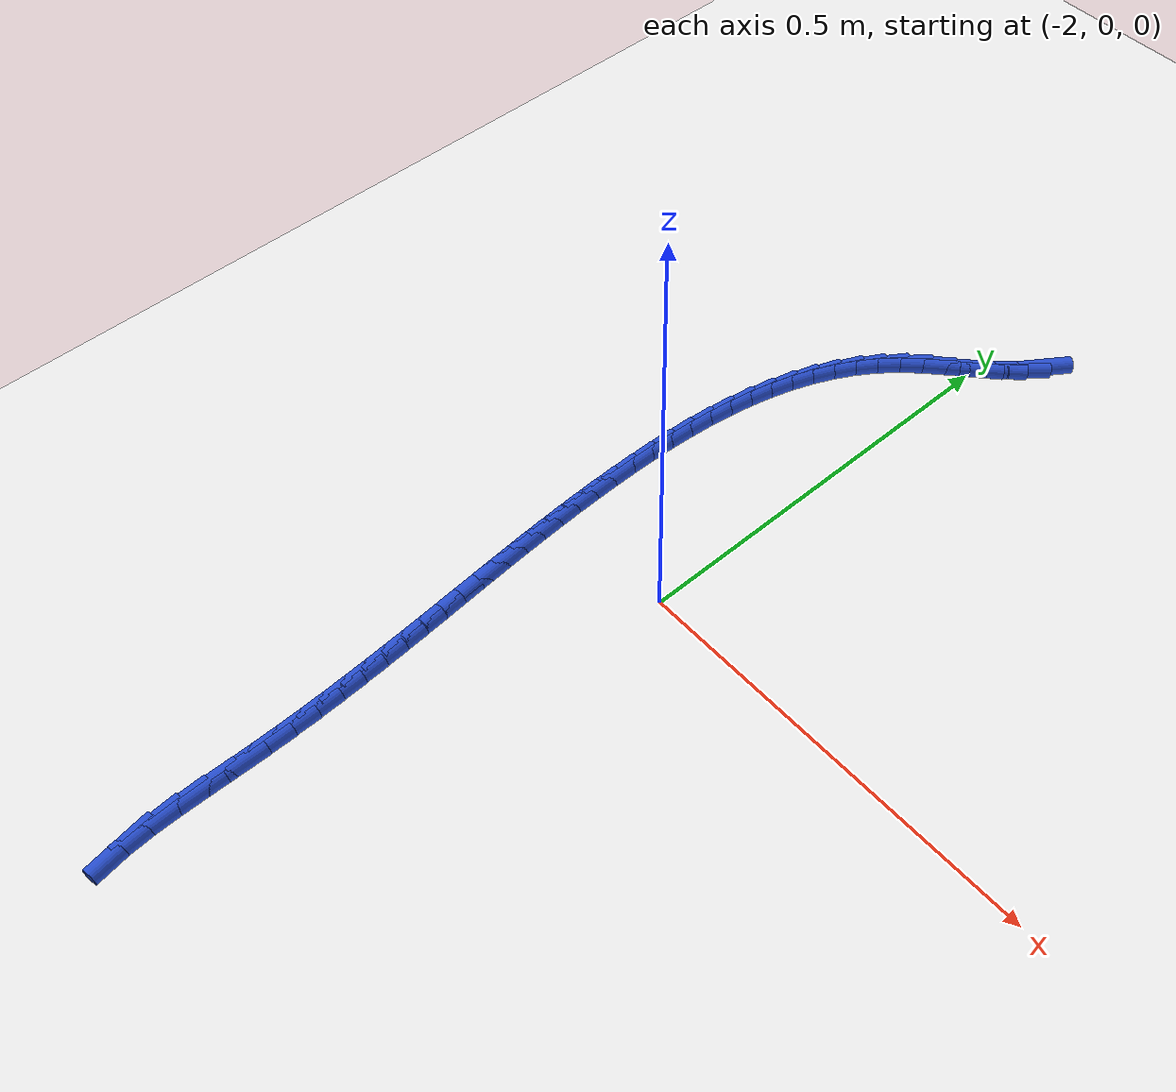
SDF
<sdf version="1.6">
 <world name="default">
  <model name="ground_plane">
   <static>1</static>
   <link name="link">
    <collision name="collision">
     <geometry><plane><normal>0 0 1</normal><size>100 100</size></plane></geometry>
     <surface><friction><ode><mu>100</mu><mu2>50</mu2></ode></friction></surface>
    </collision>
    <visual name="visual">
     <cast_shadows>0</cast_shadows>
     <geometry><plane><normal>0 0 1</normal><size>100 100</size></plane></geometry>
     <material>
      <script><uri>file://media/materials/scripts/gazebo.material</uri><name>Gazebo/WhiteGlow</name></script>
     </material>
    </visual>
   </link>
  </model>
  <model name="line">
   <link name="link_104">
    <pose>-1.9464546844692985 0.5647826969443958 0.01 0 1.57 0.9623820127964574</pose>
    <collision name="collision">
     <geometry><cylinder><radius>0.01</radius><length>0.08</length></cylinder></geometry>
    </collision>
    <visual name="visual">
     <material>
      <script><name>Gazebo/Blue</name><uri>file://media/materials/scripts/gazebo.material</uri></script>
     </material>
     <geometry><cylinder><radius>0.01</radius><length>0.08</length></cylinder></geometry>
    </visual>
   </link>
   <link name="link_105">
    <pose>-1.9619744686578455 0.5425021217357677 0.01 0 1.57 0.8348467030545368</pose>
    <collision name="collision">
     <geometry><cylinder><radius>0.01</radius><length>0.08</length></cylinder></geometry>
    </collision>
    <visual name="visual">
     <material>
      <script><name>Gazebo/Blue</name><uri>file://media/materials/scripts/gazebo.material</uri></script>
     </material>
     <geometry><cylinder><radius>0.01</radius><length>0.08</length></cylinder></geometry>
    </visual>
   </link>
   <link name="link_106">
    <pose>-1.9803952766112232 0.5221631348588148 0.01 0 1.57 0.7561252338814043</pose>
    <collision name="collision">
     <geometry><cylinder><radius>0.01</radius><length>0.08</length></cylinder></geometry>
    </collision>
    <visual name="visual">
     <material>
      <script><name>Gazebo/Blue</name><uri>file://media/materials/scripts/gazebo.material</uri></script>
     </material>
     <geometry><cylinder><radius>0.01</radius><length>0.08</length></cylinder></geometry>
    </visual>
   </link>
   <link name="link_107">
    <pose>-2.0006681552356387 0.5030437137348354 0.01 0 1.57 0.7241614613899445</pose>
    <collision name="collision">
     <geometry><cylinder><radius>0.01</radius><length>0.08</length></cylinder></geometry>
    </collision>
    <visual name="visual">
     <material>
      <script><name>Gazebo/Blue</name><uri>file://media/materials/scripts/gazebo.material</uri></script>
     </material>
     <geometry><cylinder><radius>0.01</radius><length>0.08</length></cylinder></geometry>
    </visual>
   </link>
   <link name="link_108">
    <pose>-2.0217320306328013 0.48441360965173036 0.01 0 1.57 0.7369608355492149</pose>
    <collision name="collision">
     <geometry><cylinder><radius>0.01</radius><length>0.08</length></cylinder></geometry>
    </collision>
    <visual name="visual">
     <material>
      <script><name>Gazebo/Blue</name><uri>file://media/materials/scripts/gazebo.material</uri></script>
     </material>
     <geometry><cylinder><radius>0.01</radius><length>0.08</length></cylinder></geometry>
    </visual>
   </link>
   <link name="link_109">
    <pose>-2.0425258289044192 0.4655425738973997 0.01 0 1.57 0.7950445191530661</pose>
    <collision name="collision">
     <geometry><cylinder><radius>0.01</radius><length>0.08</length></cylinder></geometry>
    </collision>
    <visual name="visual">
     <material>
      <script><name>Gazebo/Blue</name><uri>file://media/materials/scripts/gazebo.material</uri></script>
     </material>
     <geometry><cylinder><radius>0.01</radius><length>0.08</length></cylinder></geometry>
    </visual>
   </link>
   <link name="link_110">
    <pose>-2.0619887106263812 0.4457005311302075 0.01 0 1.57 0.8886003122689674</pose>
    <collision name="collision">
     <geometry><cylinder><radius>0.01</radius><length>0.08</length></cylinder></geometry>
    </collision>
    <visual name="visual">
     <material>
      <script><name>Gazebo/Blue</name><uri>file://media/materials/scripts/gazebo.material</uri></script>
     </material>
     <geometry><cylinder><radius>0.01</radius><length>0.08</length></cylinder></geometry>
    </visual>
   </link>
   <link name="link_111">
    <pose>-2.0793274538833786 0.4243552826865567 0.01 0 1.57 0.982735867131478</pose>
    <collision name="collision">
     <geometry><cylinder><radius>0.01</radius><length>0.08</length></cylinder></geometry>
    </collision>
    <visual name="visual">
     <material>
      <script><name>Gazebo/Blue</name><uri>file://media/materials/scripts/gazebo.material</uri></script>
     </material>
     <geometry><cylinder><radius>0.01</radius><length>0.08</length></cylinder></geometry>
    </visual>
   </link>
   <link name="link_112">
    <pose>-2.094530937373768 0.40155291595003506 0.01 0 1.57 1.0698774159428524</pose>
    <collision name="collision">
     <geometry><cylinder><radius>0.01</radius><length>0.08</length></cylinder></geometry>
    </collision>
    <visual name="visual">
     <material>
      <script><name>Gazebo/Blue</name><uri>file://media/materials/scripts/gazebo.material</uri></script>
     </material>
     <geometry><cylinder><radius>0.01</radius><length>0.08</length></cylinder></geometry>
    </visual>
   </link>
   <link name="link_113">
    <pose>-2.107730151943334 0.3774445961811116 0.01 0 1.57 1.1493410232021635</pose>
    <collision name="collision">
     <geometry><cylinder><radius>0.01</radius><length>0.08</length></cylinder></geometry>
    </collision>
    <visual name="visual">
     <material>
      <script><name>Gazebo/Blue</name><uri>file://media/materials/scripts/gazebo.material</uri></script>
     </material>
     <geometry><cylinder><radius>0.01</radius><length>0.08</length></cylinder></geometry>
    </visual>
   </link>
   <link name="link_114">
    <pose>-2.119056088437858 0.35218148864025584 0.01 0 1.57 1.2209460215558836</pose>
    <collision name="collision">
     <geometry><cylinder><radius>0.01</radius><length>0.08</length></cylinder></geometry>
    </collision>
    <visual name="visual">
     <material>
      <script><name>Gazebo/Blue</name><uri>file://media/materials/scripts/gazebo.material</uri></script>
     </material>
     <geometry><cylinder><radius>0.01</radius><length>0.08</length></cylinder></geometry>
    </visual>
   </link>
   <link name="link_115">
    <pose>-2.1286397377031223 0.3259147585879358 0.01 0 1.57 1.2848765263477977</pose>
    <collision name="collision">
     <geometry><cylinder><radius>0.01</radius><length>0.08</length></cylinder></geometry>
    </collision>
    <visual name="visual">
     <material>
      <script><name>Gazebo/Blue</name><uri>file://media/materials/scripts/gazebo.material</uri></script>
     </material>
     <geometry><cylinder><radius>0.01</radius><length>0.08</length></cylinder></geometry>
    </visual>
   </link>
   <link name="link_116">
    <pose>-2.1366120905849106 0.298795571284622 0.01 0 1.57 1.3415438661761028</pose>
    <collision name="collision">
     <geometry><cylinder><radius>0.01</radius><length>0.08</length></cylinder></geometry>
    </collision>
    <visual name="visual">
     <material>
      <script><name>Gazebo/Blue</name><uri>file://media/materials/scripts/gazebo.material</uri></script>
     </material>
     <geometry><cylinder><radius>0.01</radius><length>0.08</length></cylinder></geometry>
    </visual>
   </link>
   <link name="link_117">
    <pose>-2.143104137929005 0.2709750919907828 0.01 0 1.57 1.3914737605114753</pose>
    <collision name="collision">
     <geometry><cylinder><radius>0.01</radius><length>0.08</length></cylinder></geometry>
    </collision>
    <visual name="visual">
     <material>
      <script><name>Gazebo/Blue</name><uri>file://media/materials/scripts/gazebo.material</uri></script>
     </material>
     <geometry><cylinder><radius>0.01</radius><length>0.08</length></cylinder></geometry>
    </visual>
   </link>
   <link name="link_118">
    <pose>-2.1482468705811875 0.24260448596688697 0.01 0 1.57 1.4352247302440326</pose>
    <collision name="collision">
     <geometry><cylinder><radius>0.01</radius><length>0.08</length></cylinder></geometry>
    </collision>
    <visual name="visual">
     <material>
      <script><name>Gazebo/Blue</name><uri>file://media/materials/scripts/gazebo.material</uri></script>
     </material>
     <geometry><cylinder><radius>0.01</radius><length>0.08</length></cylinder></geometry>
    </visual>
   </link>
   <link name="link_119">
    <pose>-2.1521712793872427 0.21383491847340438 0.01 0 1.57 1.473334435243141</pose>
    <collision name="collision">
     <geometry><cylinder><radius>0.01</radius><length>0.08</length></cylinder></geometry>
    </collision>
    <visual name="visual">
     <material>
      <script><name>Gazebo/Blue</name><uri>file://media/materials/scripts/gazebo.material</uri></script>
     </material>
     <geometry><cylinder><radius>0.01</radius><length>0.08</length></cylinder></geometry>
    </visual>
   </link>
   <link name="link_120">
    <pose>-2.155008355192951 0.18481755477080375 0.01 0 1.57 1.5062870044493666</pose>
    <collision name="collision">
     <geometry><cylinder><radius>0.01</radius><length>0.08</length></cylinder></geometry>
    </collision>
    <visual name="visual">
     <material>
      <script><name>Gazebo/Blue</name><uri>file://media/materials/scripts/gazebo.material</uri></script>
     </material>
     <geometry><cylinder><radius>0.01</radius><length>0.08</length></cylinder></geometry>
    </visual>
   </link>
   <link name="link_121">
    <pose>-2.156889088844096 0.15570356011955422 0.01 0 1.57 1.5344942523332061</pose>
    <collision name="collision">
     <geometry><cylinder><radius>0.01</radius><length>0.08</length></cylinder></geometry>
    </collision>
    <visual name="visual">
     <material>
      <script><name>Gazebo/Blue</name><uri>file://media/materials/scripts/gazebo.material</uri></script>
     </material>
     <geometry><cylinder><radius>0.01</radius><length>0.08</length></cylinder></geometry>
    </visual>
   </link>
   <link name="link_122">
    <pose>-2.1579444711864606 0.12664409978012478 0.01 0 1.57 1.558284854050379</pose>
    <collision name="collision">
     <geometry><cylinder><radius>0.01</radius><length>0.08</length></cylinder></geometry>
    </collision>
    <visual name="visual">
     <material>
      <script><name>Gazebo/Blue</name><uri>file://media/materials/scripts/gazebo.material</uri></script>
     </material>
     <geometry><cylinder><radius>0.01</radius><length>0.08</length></cylinder></geometry>
    </visual>
   </link>
   <link name="link_123">
    <pose>-2.1583054930658268 0.0977903390129842 0.01 0 1.57 -1.5636957521345343</pose>
    <collision name="collision">
     <geometry><cylinder><radius>0.01</radius><length>0.08</length></cylinder></geometry>
    </collision>
    <visual name="visual">
     <material>
      <script><name>Gazebo/Blue</name><uri>file://media/materials/scripts/gazebo.material</uri></script>
     </material>
     <geometry><cylinder><radius>0.01</radius><length>0.08</length></cylinder></geometry>
    </visual>
   </link>
   <link name="link_124">
    <pose>-2.1581031453279778 0.06929344307860241 0.01 0 1.57 -1.547834949372782</pose>
    <collision name="collision">
     <geometry><cylinder><radius>0.01</radius><length>0.08</length></cylinder></geometry>
    </collision>
    <visual name="visual">
     <material>
      <script><name>Gazebo/Blue</name><uri>file://media/materials/scripts/gazebo.material</uri></script>
     </material>
     <geometry><cylinder><radius>0.01</radius><length>0.08</length></cylinder></geometry>
    </visual>
   </link>
   <link name="link_125">
    <pose>-2.157459825845208 0.041280906680430766 0.01 0 1.57 -1.533958085916826</pose>
    <collision name="collision">
     <geometry><cylinder><radius>0.01</radius><length>0.08</length></cylinder></geometry>
    </collision>
    <visual name="visual">
     <material>
      <script><name>Gazebo/Blue</name><uri>file://media/materials/scripts/gazebo.material</uri></script>
     </material>
     <geometry><cylinder><radius>0.01</radius><length>0.08</length></cylinder></geometry>
    </visual>
   </link>
   <link name="link_126">
    <pose>-2.1564445573085793 0.013733195059703565 0.01 0 1.57 -1.5215461282622815</pose>
    <collision name="collision">
     <geometry><cylinder><radius>0.01</radius><length>0.08</length></cylinder></geometry>
    </collision>
    <visual name="visual">
     <material>
      <script><name>Gazebo/Blue</name><uri>file://media/materials/scripts/gazebo.material</uri></script>
     </material>
     <geometry><cylinder><radius>0.01</radius><length>0.08</length></cylinder></geometry>
    </visual>
   </link>
   <link name="link_127">
    <pose>-2.1551058989369776 -0.013425596061650143 0.01 0 1.57 -1.5107650849887322</pose>
    <collision name="collision">
     <geometry><cylinder><radius>0.01</radius><length>0.08</length></cylinder></geometry>
    </collision>
    <visual name="visual">
     <material>
      <script><name>Gazebo/Blue</name><uri>file://media/materials/scripts/gazebo.material</uri></script>
     </material>
     <geometry><cylinder><radius>0.01</radius><length>0.08</length></cylinder></geometry>
    </visual>
   </link>
   <link name="link_128">
    <pose>-2.153492368090823 -0.040271486266748494 0.01 0 1.57 -1.5017609805808831</pose>
    <collision name="collision">
     <geometry><cylinder><radius>0.01</radius><length>0.08</length></cylinder></geometry>
    </collision>
    <visual name="visual">
     <material>
      <script><name>Gazebo/Blue</name><uri>file://media/materials/scripts/gazebo.material</uri></script>
     </material>
     <geometry><cylinder><radius>0.01</radius><length>0.08</length></cylinder></geometry>
    </visual>
   </link>
   <link name="link_129">
    <pose>-2.151652482130534 -0.06688049513870933 0.01 0 1.57 -1.4946540229695542</pose>
    <collision name="collision">
     <geometry><cylinder><radius>0.01</radius><length>0.08</length></cylinder></geometry>
    </collision>
    <visual name="visual">
     <material>
      <script><name>Gazebo/Blue</name><uri>file://media/materials/scripts/gazebo.material</uri></script>
     </material>
     <geometry><cylinder><radius>0.01</radius><length>0.08</length></cylinder></geometry>
    </visual>
   </link>
   <link name="link_130">
    <pose>-2.1496347584165325 -0.09332864226065062 0.01 0 1.57 -1.4895350395210905</pose>
    <collision name="collision">
     <geometry><cylinder><radius>0.01</radius><length>0.08</length></cylinder></geometry>
    </collision>
    <visual name="visual">
     <material>
      <script><name>Gazebo/Blue</name><uri>file://media/materials/scripts/gazebo.material</uri></script>
     </material>
     <geometry><cylinder><radius>0.01</radius><length>0.08</length></cylinder></geometry>
    </visual>
   </link>
   <link name="link_131">
    <pose>-2.147487714309237 -0.11969194721569011 0.01 0 1.57 -1.4864629284250408</pose>
    <collision name="collision">
     <geometry><cylinder><radius>0.01</radius><length>0.08</length></cylinder></geometry>
    </collision>
    <visual name="visual">
     <material>
      <script><name>Gazebo/Blue</name><uri>file://media/materials/scripts/gazebo.material</uri></script>
     </material>
     <geometry><cylinder><radius>0.01</radius><length>0.08</length></cylinder></geometry>
    </visual>
   </link>
   <link name="link_132">
    <pose>-2.1452598671690675 -0.1460464295869456 0.01 0 1.57 -1.4854632101677843</pose>
    <collision name="collision">
     <geometry><cylinder><radius>0.01</radius><length>0.08</length></cylinder></geometry>
    </collision>
    <visual name="visual">
     <material>
      <script><name>Gazebo/Blue</name><uri>file://media/materials/scripts/gazebo.material</uri></script>
     </material>
     <geometry><cylinder><radius>0.01</radius><length>0.08</length></cylinder></geometry>
    </visual>
   </link>
   <link name="link_133">
    <pose>-2.142999734356444 -0.17246810895753575 0.01 0 1.57 -1.4865277059617075</pose>
    <collision name="collision">
     <geometry><cylinder><radius>0.01</radius><length>0.08</length></cylinder></geometry>
    </collision>
    <visual name="visual">
     <material>
      <script><name>Gazebo/Blue</name><uri>file://media/materials/scripts/gazebo.material</uri></script>
     </material>
     <geometry><cylinder><radius>0.01</radius><length>0.08</length></cylinder></geometry>
    </visual>
   </link>
   <link name="link_134">
    <pose>-2.140755833231787 -0.19903300491057685 0.01 0 1.57 -1.4896153188494534</pose>
    <collision name="collision">
     <geometry><cylinder><radius>0.01</radius><length>0.08</length></cylinder></geometry>
    </collision>
    <visual name="visual">
     <material>
      <script><name>Gazebo/Blue</name><uri>file://media/materials/scripts/gazebo.material</uri></script>
     </material>
     <geometry><cylinder><radius>0.01</radius><length>0.08</length></cylinder></geometry>
    </visual>
   </link>
   <link name="link_135">
    <pose>-2.138576681155517 -0.2258171370291875 0.01 0 1.57 -1.4946538494336243</pose>
    <collision name="collision">
     <geometry><cylinder><radius>0.01</radius><length>0.08</length></cylinder></geometry>
    </collision>
    <visual name="visual">
     <material>
      <script><name>Gazebo/Blue</name><uri>file://media/materials/scripts/gazebo.material</uri></script>
     </material>
     <geometry><cylinder><radius>0.01</radius><length>0.08</length></cylinder></geometry>
    </visual>
   </link>
   <link name="link_136">
    <pose>-2.136510795488052 -0.25289652489648556 0.01 0 1.57 -1.5015427408643982</pose>
    <collision name="collision">
     <geometry><cylinder><radius>0.01</radius><length>0.08</length></cylinder></geometry>
    </collision>
    <visual name="visual">
     <material>
      <script><name>Gazebo/Blue</name><uri>file://media/materials/scripts/gazebo.material</uri></script>
     </material>
     <geometry><cylinder><radius>0.01</radius><length>0.08</length></cylinder></geometry>
    </visual>
   </link>
   <link name="link_137">
    <pose>-2.1346066935898125 -0.2803471880955888 0.01 0 1.57 -1.5101566155001382</pose>
    <collision name="collision">
     <geometry><cylinder><radius>0.01</radius><length>0.08</length></cylinder></geometry>
    </collision>
    <visual name="visual">
     <material>
      <script><name>Gazebo/Blue</name><uri>file://media/materials/scripts/gazebo.material</uri></script>
     </material>
     <geometry><cylinder><radius>0.01</radius><length>0.08</length></cylinder></geometry>
    </visual>
   </link>
   <link name="link_138">
    <pose>-2.1329128928212193 -0.3082451462096152 0.01 0 1.57 -1.5203494378920135</pose>
    <collision name="collision">
     <geometry><cylinder><radius>0.01</radius><length>0.08</length></cylinder></geometry>
    </collision>
    <visual name="visual">
     <material>
      <script><name>Gazebo/Blue</name><uri>file://media/materials/scripts/gazebo.material</uri></script>
     </material>
     <geometry><cylinder><radius>0.01</radius><length>0.08</length></cylinder></geometry>
    </visual>
   </link>
   <link name="link_139">
    <pose>-2.1314779105426913 -0.3366664188216823 0.01 0 1.57 -1.5319591160837065</pose>
    <collision name="collision">
     <geometry><cylinder><radius>0.01</radius><length>0.08</length></cylinder></geometry>
    </collision>
    <visual name="visual">
     <material>
      <script><name>Gazebo/Blue</name><uri>file://media/materials/scripts/gazebo.material</uri></script>
     </material>
     <geometry><cylinder><radius>0.01</radius><length>0.08</length></cylinder></geometry>
    </visual>
   </link>
   <link name="link_140">
    <pose>-2.1303502641146492 -0.36568702551490917 0.01 0 1.57 -1.5448123376120746</pose>
    <collision name="collision">
     <geometry><cylinder><radius>0.01</radius><length>0.08</length></cylinder></geometry>
    </collision>
    <visual name="visual">
     <material>
      <script><name>Gazebo/Blue</name><uri>file://media/materials/scripts/gazebo.material</uri></script>
     </material>
     <geometry><cylinder><radius>0.01</radius><length>0.08</length></cylinder></geometry>
    </visual>
   </link>
   <link name="link_141">
    <pose>-2.129578470897512 -0.3953829858724116 0.01 0 1.57 -1.5587294306608295</pose>
    <collision name="collision">
     <geometry><cylinder><radius>0.01</radius><length>0.08</length></cylinder></geometry>
    </collision>
    <visual name="visual">
     <material>
      <script><name>Gazebo/Blue</name><uri>file://media/materials/scripts/gazebo.material</uri></script>
     </material>
     <geometry><cylinder><radius>0.01</radius><length>0.08</length></cylinder></geometry>
    </visual>
   </link>
   <link name="link_142">
    <pose>-2.129211048251701 -0.42583031947730865 0.01 0 1.57 1.5680694860638058</pose>
    <collision name="collision">
     <geometry><cylinder><radius>0.01</radius><length>0.08</length></cylinder></geometry>
    </collision>
    <visual name="visual">
     <material>
      <script><name>Gazebo/Blue</name><uri>file://media/materials/scripts/gazebo.material</uri></script>
     </material>
     <geometry><cylinder><radius>0.01</radius><length>0.08</length></cylinder></geometry>
    </visual>
   </link>
   <link name="link_143">
    <pose>-2.1292963290973685 -0.4571048392253491 0.01 0 1.57 1.5575590685156038</pose>
    <collision name="collision">
     <geometry><cylinder><radius>0.01</radius><length>0.08</length></cylinder></geometry>
    </collision>
    <visual name="visual">
     <material>
      <script><name>Gazebo/Blue</name><uri>file://media/materials/scripts/gazebo.material</uri></script>
     </material>
     <geometry><cylinder><radius>0.01</radius><length>0.08</length></cylinder></geometry>
    </visual>
   </link>
   <link name="link_144">
    <pose>-2.129719881521398 -0.4890999605572836 0.01 0 1.57 1.564998314545574</pose>
    <collision name="collision">
     <geometry><cylinder><radius>0.01</radius><length>0.08</length></cylinder></geometry>
    </collision>
    <visual name="visual">
     <material>
      <script><name>Gazebo/Blue</name><uri>file://media/materials/scripts/gazebo.material</uri></script>
     </material>
     <geometry><cylinder><radius>0.01</radius><length>0.08</length></cylinder></geometry>
    </visual>
   </link>
   <link name="link_145">
    <pose>-2.129905954430589 -0.5211921356196565 0.01 0 1.57 -1.5482955853055764</pose>
    <collision name="collision">
     <geometry><cylinder><radius>0.01</radius><length>0.08</length></cylinder></geometry>
    </collision>
    <visual name="visual">
     <material>
      <script><name>Gazebo/Blue</name><uri>file://media/materials/scripts/gazebo.material</uri></script>
     </material>
     <geometry><cylinder><radius>0.01</radius><length>0.08</length></cylinder></geometry>
    </visual>
   </link>
   <link name="link_146">
    <pose>-2.1291976302563045 -0.5526668598194436 0.01 0 1.57 -1.4959717397365921</pose>
    <collision name="collision">
     <geometry><cylinder><radius>0.01</radius><length>0.08</length></cylinder></geometry>
    </collision>
    <visual name="visual">
     <material>
      <script><name>Gazebo/Blue</name><uri>file://media/materials/scripts/gazebo.material</uri></script>
     </material>
     <geometry><cylinder><radius>0.01</radius><length>0.08</length></cylinder></geometry>
    </visual>
   </link>
   <link name="link_147">
    <pose>-2.12693799142991 -0.582809628563621 0.01 0 1.57 -1.4130968861738353</pose>
    <collision name="collision">
     <geometry><cylinder><radius>0.01</radius><length>0.08</length></cylinder></geometry>
    </collision>
    <visual name="visual">
     <material>
      <script><name>Gazebo/Blue</name><uri>file://media/materials/scripts/gazebo.material</uri></script>
     </material>
     <geometry><cylinder><radius>0.01</radius><length>0.08</length></cylinder></geometry>
    </visual>
   </link>
  </model>
 </world>
</sdf>
